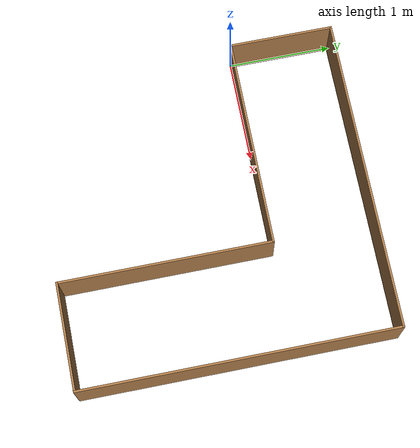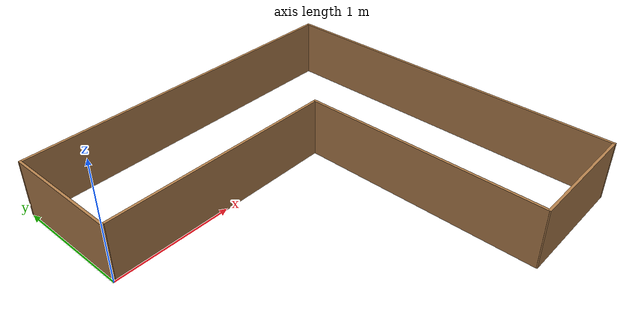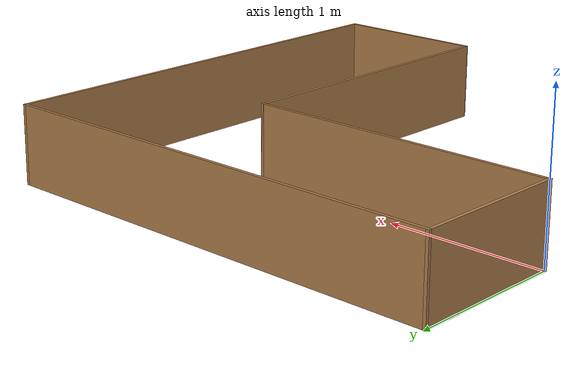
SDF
<?xml version='1.0'?>
<sdf version='1.6'>
  <model name='Motion3'>
    <pose frame=''>1.49293 -0.508891 0 0 -0 0</pose>
    <link name='Wall_0'>
      <collision name='Wall_0_Collision'>
        <geometry>
          <box>
            <size>2 0.02 0.5</size>
          </box>
        </geometry>
        <pose frame=''>0 0 0.25 0 -0 0</pose>
      </collision>
      <visual name='Wall_0_Visual'>
        <pose frame=''>0 0 0.25 0 -0 0</pose>
        <geometry>
          <box>
            <size>2 0.02 0.5</size>
          </box>
        </geometry>
        <material>
          <script>
            <uri>file://media/materials/scripts/gazebo.material</uri>
            <name>Gazebo/Wood</name>
          </script>
          <ambient>1 1 1 1</ambient>
        </material>
        <meta>
          <layer>0</layer>
        </meta>
      </visual>
      <pose frame=''>-0.500064 0.510326 0 0 -0 0</pose>
    </link>
    <link name='Wall_11'>
      <collision name='Wall_11_Collision'>
        <geometry>
          <box>
            <size>2.01 0.02 0.5</size>
          </box>
        </geometry>
        <pose frame=''>0 0 0.25 0 -0 0</pose>
      </collision>
      <visual name='Wall_11_Visual'>
        <pose frame=''>0 0 0.25 0 -0 0</pose>
        <geometry>
          <box>
            <size>2.01 0.02 0.5</size>
          </box>
        </geometry>
        <material>
          <script>
            <uri>file://media/materials/scripts/gazebo.material</uri>
            <name>Gazebo/Wood</name>
          </script>
          <ambient>1 1 1 1</ambient>
        </material>
        <meta>
          <layer>0</layer>
        </meta>
      </visual>
      <pose frame=''>0.489936 -0.484674 0 0 -0 -1.5708</pose>
    </link>
    <link name='Wall_16'>
      <collision name='Wall_16_Collision'>
        <geometry>
          <box>
            <size>1 0.02 0.5</size>
          </box>
        </geometry>
        <pose frame=''>0 0 0.25 0 -0 0</pose>
      </collision>
      <visual name='Wall_16_Visual'>
        <pose frame=''>0 0 0.25 0 -0 0</pose>
        <geometry>
          <box>
            <size>1 0.02 0.5</size>
          </box>
        </geometry>
        <material>
          <script>
            <uri>file://media/materials/scripts/gazebo.material</uri>
            <name>Gazebo/Wood</name>
          </script>
          <ambient>1 1 1 1</ambient>
        </material>
        <meta>
          <layer>0</layer>
        </meta>
      </visual>
      <pose frame=''>0.981774 -1.48898 0 0 -0 0</pose>
    </link>
    <link name='Wall_2'>
      <collision name='Wall_2_Collision'>
        <geometry>
          <box>
            <size>1 0.02 0.5</size>
          </box>
        </geometry>
        <pose frame=''>0 0 0.25 0 -0 0</pose>
      </collision>
      <visual name='Wall_2_Visual'>
        <pose frame=''>0 0 0.25 0 -0 0</pose>
        <geometry>
          <box>
            <size>1 0.02 0.5</size>
          </box>
        </geometry>
        <material>
          <script>
            <uri>file://media/materials/scripts/gazebo.material</uri>
            <name>Gazebo/Wood</name>
          </script>
          <ambient>1 1 1 1</ambient>
        </material>
        <meta>
          <layer>0</layer>
        </meta>
      </visual>
      <pose frame=''>-1.49 1.00011 0 0 -0 1.57066</pose>
    </link>
    <link name='Wall_4'>
      <collision name='Wall_4_Collision'>
        <geometry>
          <box>
            <size>3 0.02 0.5</size>
          </box>
        </geometry>
        <pose frame=''>0 0 0.25 0 -0 0</pose>
      </collision>
      <visual name='Wall_4_Visual'>
        <pose frame=''>0 0 0.25 0 -0 0</pose>
        <geometry>
          <box>
            <size>3 0.02 0.5</size>
          </box>
        </geometry>
        <material>
          <script>
            <uri>file://media/materials/scripts/gazebo.material</uri>
            <name>Gazebo/Wood</name>
          </script>
          <ambient>1 1 1 1</ambient>
        </material>
        <meta>
          <layer>0</layer>
        </meta>
      </visual>
      <pose frame=''>6.6e-05 1.48989 0 0 -0 0</pose>
    </link>
    <link name='Wall_6'>
      <collision name='Wall_6_Collision'>
        <geometry>
          <box>
            <size>3 0.02 0.5</size>
          </box>
        </geometry>
        <pose frame=''>0 0 0.25 0 -0 0</pose>
      </collision>
      <visual name='Wall_6_Visual'>
        <pose frame=''>0 0 0.25 0 -0 0</pose>
        <geometry>
          <box>
            <size>3 0.02 0.5</size>
          </box>
        </geometry>
        <material>
          <script>
            <uri>file://media/materials/scripts/gazebo.material</uri>
            <name>Gazebo/Wood</name>
          </script>
          <ambient>1 1 1 1</ambient>
        </material>
        <meta>
          <layer>0</layer>
        </meta>
      </visual>
      <pose frame=''>1.49007 -0.000109 0 0 -0 -1.5708</pose>
    </link>
    <static>1</static>
  </model>
</sdf>
